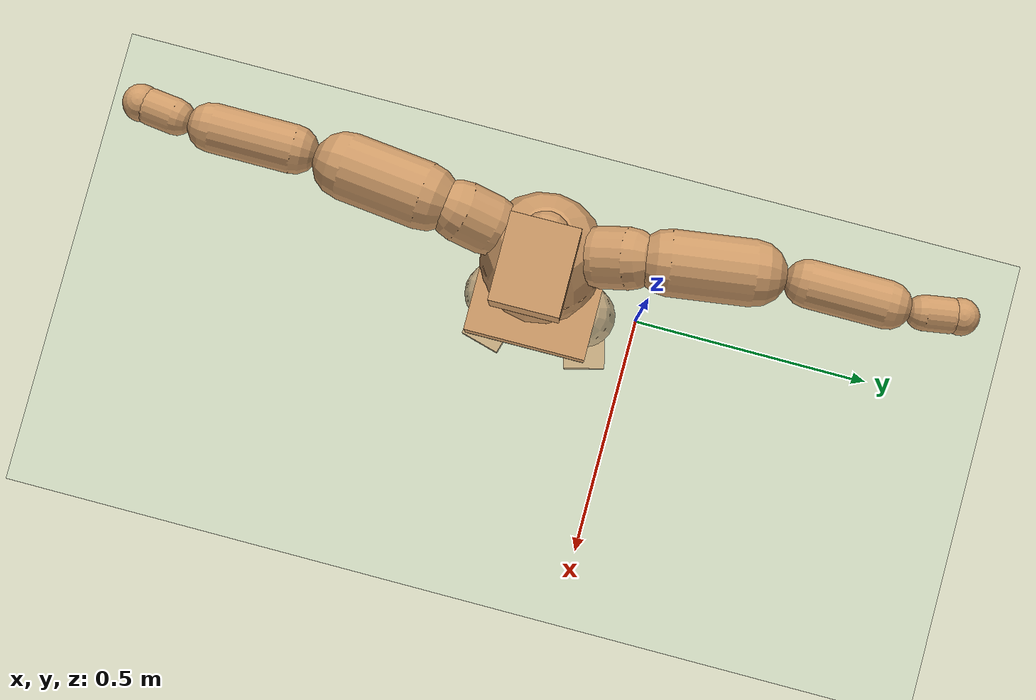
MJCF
<mujoco model="humanoid">
  <compiler coordinate="local" angle="radian"/>
  <default>
    <joint damping="0.0" armature="0.01" stiffness="0.0" limited="true"/>
    <geom conaffinity="1" condim="3" contype="7" margin="0.001" rgba="0.8 0.6 .4 1"/>
  </default>
  <asset>
    <texture type="skybox" builtin="gradient" rgb1=".4 .5 .6" rgb2="0 0 0" width="100" height="100"/>
    <texture builtin="flat" height="1278" mark="cross" markrgb="1 1 1" name="texgeom" random="0.01" rgb1="0.8 0.6 0.4" rgb2="0.8 0.6 0.4" type="cube" width="127"/>
    <texture builtin="checker" height="100" name="texplane" rgb1="0 0 0" rgb2="0.8 0.8 0.8" type="2d" width="100"/>
    <material name="MatPlane" reflectance="0.5" shininess="1" specular="1" texrepeat="60 60" texture="texplane"/>
    <material name="geom" texture="texgeom" texuniform="true"/>
  </asset>
  <worldbody>
    <light cutoff="100" diffuse="1 1 1" dir="-0 0 -1.3" directional="true" exponent="1" pos="0 0 1.3" specular=".1 .1 .1"/>
    <geom conaffinity="1" condim="3" name="floor" pos="0 0 0" rgba="0.8 0.9 0.8 1" size="100 100 .2" type="plane" material="MatPlane"/>
    <body name="Pelvis" pos="0.001 -0.2135 0.0487">
      <freejoint name="Pelvis"/>
      <geom type="box" contype="1" conaffinity="1" density="500" pos="-0.0049 -0.0000 -0.0141" size="0.1173 0.1291 0.0459" quat="1.0000 0.0000 0.0000 0.0021" name="Pelvis"/>
      <body name="L_Hip" pos="0.0042 0.0843 -0.099">
        <joint name="L_Hip_x" type="hinge" pos="0 0 0" axis="1 0 0" stiffness="800" damping="80" armature="0.02" range="-180.0000 180.0000"/>
        <joint name="L_Hip_y" type="hinge" pos="0 0 0" axis="0 1 0" stiffness="800" damping="80" armature="0.02" range="-180.0000 180.0000"/>
        <joint name="L_Hip_z" type="hinge" pos="0 0 0" axis="0 0 1" stiffness="800" damping="80" armature="0.02" range="-180.0000 180.0000"/>
        <geom type="capsule" contype="1" conaffinity="1" density="500" fromto="-0.0049 0.0051 -0.0773 -0.0196 0.0204 -0.3092" size="0.0719" name="L_Hip"/>
        <body name="L_Knee" pos="-0.0245 0.0254 -0.3865">
          <joint name="L_Knee_x" type="hinge" pos="0 0 0" axis="1 0 0" stiffness="800" damping="80" armature="0.02" range="-180.0000 180.0000"/>
          <joint name="L_Knee_y" type="hinge" pos="0 0 0" axis="0 1 0" stiffness="800" damping="80" armature="0.02" range="-180.0000 180.0000"/>
          <joint name="L_Knee_z" type="hinge" pos="0 0 0" axis="0 0 1" stiffness="800" damping="80" armature="0.02" range="-180.0000 180.0000"/>
          <geom type="capsule" contype="1" conaffinity="1" density="500" fromto="-0.0103 -0.0020 -0.0828 -0.0411 -0.0078 -0.3311" size="0.0597" name="L_Knee"/>
          <body name="L_Ankle" pos="-0.0514 -0.0098 -0.4139">
            <joint name="L_Ankle_x" type="hinge" pos="0 0 0" axis="1 0 0" stiffness="800" damping="80" armature="0.02" range="-180.0000 180.0000"/>
            <joint name="L_Ankle_y" type="hinge" pos="0 0 0" axis="0 1 0" stiffness="800" damping="80" armature="0.02" range="-180.0000 180.0000"/>
            <joint name="L_Ankle_z" type="hinge" pos="0 0 0" axis="0 0 1" stiffness="800" damping="80" armature="0.02" range="-180.0000 180.0000"/>
            <geom type="box" contype="1" conaffinity="1" density="500" pos="0.0594 0.0152 -0.0299" size="0.0873 0.0528 0.022" quat="0.9922 0.0000 0.0000 0.1247" name="L_Ankle"/>
            <body name="L_Toe" pos="0.1188 0.0303 -0.0599">
              <joint name="L_Toe_x" type="hinge" pos="0 0 0" axis="1 0 0" stiffness="500" damping="50" armature="0.02" range="-180.0000 180.0000"/>
              <joint name="L_Toe_y" type="hinge" pos="0 0 0" axis="0 1 0" stiffness="500" damping="50" armature="0.02" range="-180.0000 180.0000"/>
              <joint name="L_Toe_z" type="hinge" pos="0 0 0" axis="0 0 1" stiffness="500" damping="50" armature="0.02" range="-180.0000 180.0000"/>
              <geom type="box" contype="1" conaffinity="1" density="500" pos="0.0000 0.0000 0.0300" size="0.001 0.0026 0.0011" quat="0.9915 0.0000 0.0000 0.1304" name="L_Toe"/>
            </body>
          </body>
        </body>
      </body>
      <body name="R_Hip" pos="0.0069 -0.0818 -0.1003">
        <joint name="R_Hip_x" type="hinge" pos="0 0 0" axis="1 0 0" stiffness="800" damping="80" armature="0.02" range="-180.0000 180.0000"/>
        <joint name="R_Hip_y" type="hinge" pos="0 0 0" axis="0 1 0" stiffness="800" damping="80" armature="0.02" range="-180.0000 180.0000"/>
        <joint name="R_Hip_z" type="hinge" pos="0 0 0" axis="0 0 1" stiffness="800" damping="80" armature="0.02" range="-180.0000 180.0000"/>
        <geom type="capsule" contype="1" conaffinity="1" density="500" fromto="-0.0051 -0.0066 -0.0778 -0.0205 -0.0262 -0.3111" size="0.0711" name="R_Hip"/>
        <body name="R_Knee" pos="-0.0257 -0.0328 -0.3889">
          <joint name="R_Knee_x" type="hinge" pos="0 0 0" axis="1 0 0" stiffness="800" damping="80" armature="0.02" range="-180.0000 180.0000"/>
          <joint name="R_Knee_y" type="hinge" pos="0 0 0" axis="0 1 0" stiffness="800" damping="80" armature="0.02" range="-180.0000 180.0000"/>
          <joint name="R_Knee_z" type="hinge" pos="0 0 0" axis="0 0 1" stiffness="800" damping="80" armature="0.02" range="-180.0000 180.0000"/>
          <geom type="capsule" contype="1" conaffinity="1" density="500" fromto="-0.0102 0.0024 -0.0831 -0.0409 0.0097 -0.3325" size="0.0594" name="R_Knee"/>
          <body name="R_Ankle" pos="-0.0511 0.0121 -0.4157">
            <joint name="R_Ankle_x" type="hinge" pos="0 0 0" axis="1 0 0" stiffness="800" damping="80" armature="0.02" range="-180.0000 180.0000"/>
            <joint name="R_Ankle_y" type="hinge" pos="0 0 0" axis="0 1 0" stiffness="800" damping="80" armature="0.02" range="-180.0000 180.0000"/>
            <joint name="R_Ankle_z" type="hinge" pos="0 0 0" axis="0 0 1" stiffness="800" damping="80" armature="0.02" range="-180.0000 180.0000"/>
            <geom type="box" contype="1" conaffinity="1" density="500" pos="0.0617 -0.0168 -0.0251" size="0.0879 0.0519 0.022" quat="0.9912 0.0000 0.0000 -0.1325" name="R_Ankle"/>
            <body name="R_Toe" pos="0.1233 -0.0336 -0.0502">
              <joint name="R_Toe_x" type="hinge" pos="0 0 0" axis="1 0 0" stiffness="500" damping="50" armature="0.02" range="-180.0000 180.0000"/>
              <joint name="R_Toe_y" type="hinge" pos="0 0 0" axis="0 1 0" stiffness="500" damping="50" armature="0.02" range="-180.0000 180.0000"/>
              <joint name="R_Toe_z" type="hinge" pos="0 0 0" axis="0 0 1" stiffness="500" damping="50" armature="0.02" range="-180.0000 180.0000"/>
              <geom type="box" contype="1" conaffinity="1" density="500" pos="0.0000 0.0000 0.0274" size="0.001 0.0025 0.0012" quat="0.9924 0.0000 0.0000 -0.1231" name="R_Toe"/>
            </body>
          </body>
        </body>
      </body>
      <body name="Torso" pos="-0.0404 -0.0027 0.1147">
        <joint name="Torso_x" type="hinge" pos="0 0 0" axis="1 0 0" stiffness="1000" damping="100" armature="0.02" range="-180.0000 180.0000"/>
        <joint name="Torso_y" type="hinge" pos="0 0 0" axis="0 1 0" stiffness="1000" damping="100" armature="0.02" range="-180.0000 180.0000"/>
        <joint name="Torso_z" type="hinge" pos="0 0 0" axis="0 0 1" stiffness="1000" damping="100" armature="0.02" range="-180.0000 180.0000"/>
        <geom type="capsule" contype="1" conaffinity="1" density="500" fromto="-0.0045 0.0014 0.0691 -0.0030 0.0010 0.0461" size="0.0898" name="Torso"/>
        <body name="Spine" pos="-0.0075 0.0024 0.1152">
          <joint name="Spine_x" type="hinge" pos="0 0 0" axis="1 0 0" stiffness="1000" damping="100" armature="0.02" range="-180.0000 180.0000"/>
          <joint name="Spine_y" type="hinge" pos="0 0 0" axis="0 1 0" stiffness="1000" damping="100" armature="0.02" range="-180.0000 180.0000"/>
          <joint name="Spine_z" type="hinge" pos="0 0 0" axis="0 0 1" stiffness="1000" damping="100" armature="0.02" range="-180.0000 180.0000"/>
          <geom type="capsule" contype="1" conaffinity="1" density="500" fromto="0.0242 0.0014 0.0303 0.0161 0.0009 0.0202" size="0.0903" name="Spine"/>
          <body name="Chest" pos="0.0403 0.0023 0.0506">
            <joint name="Chest_x" type="hinge" pos="0 0 0" axis="1 0 0" stiffness="1000" damping="100" armature="0.02" range="-180.0000 180.0000"/>
            <joint name="Chest_y" type="hinge" pos="0 0 0" axis="0 1 0" stiffness="1000" damping="100" armature="0.02" range="-180.0000 180.0000"/>
            <joint name="Chest_z" type="hinge" pos="0 0 0" axis="0 0 1" stiffness="1000" damping="100" armature="0.02" range="-180.0000 180.0000"/>
            <geom type="capsule" contype="1" conaffinity="1" density="500" fromto="-0.0321 0.0003 0.0957 -0.0214 0.0002 0.0638" size="0.118" name="Chest"/>
            <body name="Neck" pos="-0.0615 0.0018 0.2198">
              <joint name="Neck_x" type="hinge" pos="0 0 0" axis="1 0 0" stiffness="500" damping="50" armature="0.02" range="-180.0000 180.0000"/>
              <joint name="Neck_y" type="hinge" pos="0 0 0" axis="0 1 0" stiffness="500" damping="50" armature="0.02" range="-180.0000 180.0000"/>
              <joint name="Neck_z" type="hinge" pos="0 0 0" axis="0 0 1" stiffness="500" damping="50" armature="0.02" range="-180.0000 180.0000"/>
              <geom type="capsule" contype="1" conaffinity="1" density="500" fromto="0.0105 -0.0003 0.0107 0.0419 -0.0013 0.0429" size="0.0456" name="Neck"/>
              <body name="Head" pos="0.0524 -0.0016 0.0536">
                <joint name="Head_x" type="hinge" pos="0 0 0" axis="1 0 0" stiffness="500" damping="50" armature="0.02" range="-180.0000 180.0000"/>
                <joint name="Head_y" type="hinge" pos="0 0 0" axis="0 1 0" stiffness="500" damping="50" armature="0.02" range="-180.0000 180.0000"/>
                <joint name="Head_z" type="hinge" pos="0 0 0" axis="0 0 1" stiffness="500" damping="50" armature="0.02" range="-180.0000 180.0000"/>
                <geom type="box" contype="1" conaffinity="1" density="500" pos="0.0272 0.0002 0.0278" size="0.0805 0.0643 0.0554" quat="1.0000 0.0000 0.0000 0.0036" name="Head"/>
              </body>
            </body>
            <body name="L_Thorax" pos="-0.0466 0.0887 0.1304">
              <joint name="L_Thorax_x" type="hinge" pos="0 0 0" axis="1 0 0" stiffness="500" damping="50" armature="0.02" range="-180.0000 180.0000"/>
              <joint name="L_Thorax_y" type="hinge" pos="0 0 0" axis="0 1 0" stiffness="500" damping="50" armature="0.02" range="-180.0000 180.0000"/>
              <joint name="L_Thorax_z" type="hinge" pos="0 0 0" axis="0 0 1" stiffness="500" damping="50" armature="0.02" range="-180.0000 180.0000"/>
              <geom type="capsule" contype="1" conaffinity="1" density="500" fromto="-0.0030 0.0179 0.0068 -0.0122 0.0718 0.0274" size="0.0587" name="L_Thorax"/>
              <body name="L_Shoulder" pos="-0.0152 0.0897 0.0342">
                <joint name="L_Shoulder_x" type="hinge" pos="0 0 0" axis="1 0 0" stiffness="500" damping="50" armature="0.02" range="-720.0000 720.0000"/>
                <joint name="L_Shoulder_y" type="hinge" pos="0 0 0" axis="0 1 0" stiffness="500" damping="50" armature="0.02" range="-720.0000 720.0000"/>
                <joint name="L_Shoulder_z" type="hinge" pos="0 0 0" axis="0 0 1" stiffness="500" damping="50" armature="0.02" range="-720.0000 720.0000"/>
                <geom type="capsule" contype="1" conaffinity="1" density="500" fromto="-0.0073 0.0524 -0.0018 -0.0293 0.2095 -0.0071" size="0.0632" name="L_Shoulder"/>
                <body name="L_Elbow" pos="-0.0366 0.2618 -0.0088">
                  <joint name="L_Elbow_x" type="hinge" pos="0 0 0" axis="1 0 0" stiffness="500" damping="50" armature="0.02" range="-720.0000 720.0000"/>
                  <joint name="L_Elbow_y" type="hinge" pos="0 0 0" axis="0 1 0" stiffness="500" damping="50" armature="0.02" range="-720.0000 720.0000"/>
                  <joint name="L_Elbow_z" type="hinge" pos="0 0 0" axis="0 0 1" stiffness="500" damping="50" armature="0.02" range="-720.0000 720.0000"/>
                  <geom type="capsule" contype="1" conaffinity="1" density="500" fromto="0.0004 0.0497 0.0025 0.0018 0.1989 0.0101" size="0.0459" name="L_Elbow"/>
                  <body name="L_Wrist" pos="0.0022 0.2487 0.0126">
                    <joint name="L_Wrist_x" type="hinge" pos="0 0 0" axis="1 0 0" stiffness="300" damping="30" armature="0.02" range="-180.0000 180.0000"/>
                    <joint name="L_Wrist_y" type="hinge" pos="0 0 0" axis="0 1 0" stiffness="300" damping="30" armature="0.02" range="-180.0000 180.0000"/>
                    <joint name="L_Wrist_z" type="hinge" pos="0 0 0" axis="0 0 1" stiffness="300" damping="30" armature="0.02" range="-180.0000 180.0000"/>
                    <geom type="capsule" contype="1" conaffinity="1" density="500" fromto="-0.0029 0.0174 -0.0020 -0.0115 0.0697 -0.0081" size="0.0335" name="L_Wrist"/>
                    <body name="L_Hand" pos="-0.0144 0.0871 -0.0101">
                      <joint name="L_Hand_x" type="hinge" pos="0 0 0" axis="1 0 0" stiffness="300" damping="30" armature="0.02" range="-180.0000 180.0000"/>
                      <joint name="L_Hand_y" type="hinge" pos="0 0 0" axis="0 1 0" stiffness="300" damping="30" armature="0.02" range="-180.0000 180.0000"/>
                      <joint name="L_Hand_z" type="hinge" pos="0 0 0" axis="0 0 1" stiffness="300" damping="30" armature="0.02" range="-180.0000 180.0000"/>
                      <geom type="sphere" contype="1" conaffinity="1" density="500" size="0.0353" pos="0.0000 0.0000 0.0000" name="L_Hand"/>
                    </body>
                  </body>
                </body>
              </body>
            </body>
            <body name="R_Thorax" pos="-0.0524 -0.0891 0.1284">
              <joint name="R_Thorax_x" type="hinge" pos="0 0 0" axis="1 0 0" stiffness="500" damping="50" armature="0.02" range="-180.0000 180.0000"/>
              <joint name="R_Thorax_y" type="hinge" pos="0 0 0" axis="0 1 0" stiffness="500" damping="50" armature="0.02" range="-180.0000 180.0000"/>
              <joint name="R_Thorax_z" type="hinge" pos="0 0 0" axis="0 0 1" stiffness="500" damping="50" armature="0.02" range="-180.0000 180.0000"/>
              <geom type="capsule" contype="1" conaffinity="1" density="500" fromto="-0.0030 -0.0190 0.0068 -0.0120 -0.0761 0.0272" size="0.0586" name="R_Thorax"/>
              <body name="R_Shoulder" pos="-0.0151 -0.0951 0.034">
                <joint name="R_Shoulder_x" type="hinge" pos="0 0 0" axis="1 0 0" stiffness="500" damping="50" armature="0.02" range="-720.0000 720.0000"/>
                <joint name="R_Shoulder_y" type="hinge" pos="0 0 0" axis="0 1 0" stiffness="500" damping="50" armature="0.02" range="-720.0000 720.0000"/>
                <joint name="R_Shoulder_z" type="hinge" pos="0 0 0" axis="0 0 1" stiffness="500" damping="50" armature="0.02" range="-720.0000 720.0000"/>
                <geom type="capsule" contype="1" conaffinity="1" density="500" fromto="-0.0059 -0.0517 -0.0024 -0.0237 -0.2068 -0.0097" size="0.0647" name="R_Shoulder"/>
                <body name="R_Elbow" pos="-0.0297 -0.2585 -0.0122">
                  <joint name="R_Elbow_x" type="hinge" pos="0 0 0" axis="1 0 0" stiffness="500" damping="50" armature="0.02" range="-720.0000 720.0000"/>
                  <joint name="R_Elbow_y" type="hinge" pos="0 0 0" axis="0 1 0" stiffness="500" damping="50" armature="0.02" range="-720.0000 720.0000"/>
                  <joint name="R_Elbow_z" type="hinge" pos="0 0 0" axis="0 0 1" stiffness="500" damping="50" armature="0.02" range="-720.0000 720.0000"/>
                  <geom type="capsule" contype="1" conaffinity="1" density="500" fromto="0.0004 -0.0517 0.0033 0.0015 -0.2066 0.0132" size="0.0468" name="R_Elbow"/>
                  <body name="R_Wrist" pos="0.0019 -0.2583 0.0165">
                    <joint name="R_Wrist_x" type="hinge" pos="0 0 0" axis="1 0 0" stiffness="300" damping="30" armature="0.02" range="-180.0000 180.0000"/>
                    <joint name="R_Wrist_y" type="hinge" pos="0 0 0" axis="0 1 0" stiffness="300" damping="30" armature="0.02" range="-180.0000 180.0000"/>
                    <joint name="R_Wrist_z" type="hinge" pos="0 0 0" axis="0 0 1" stiffness="300" damping="30" armature="0.02" range="-180.0000 180.0000"/>
                    <geom type="capsule" contype="1" conaffinity="1" density="500" fromto="-0.0024 -0.0177 -0.0016 -0.0094 -0.0707 -0.0062" size="0.0346" name="R_Wrist"/>
                    <body name="R_Hand" pos="-0.0118 -0.0883 -0.0078">
                      <joint name="R_Hand_x" type="hinge" pos="0 0 0" axis="1 0 0" stiffness="300" damping="30" armature="0.02" range="-180.0000 180.0000"/>
                      <joint name="R_Hand_y" type="hinge" pos="0 0 0" axis="0 1 0" stiffness="300" damping="30" armature="0.02" range="-180.0000 180.0000"/>
                      <joint name="R_Hand_z" type="hinge" pos="0 0 0" axis="0 0 1" stiffness="300" damping="30" armature="0.02" range="-180.0000 180.0000"/>
                      <geom type="sphere" contype="1" conaffinity="1" density="500" size="0.0358" pos="0.0000 0.0000 0.0000" name="R_Hand"/>
                    </body>
                  </body>
                </body>
              </body>
            </body>
          </body>
        </body>
      </body>
    </body>
  </worldbody>
  <actuator>
    <motor name="L_Hip_x" joint="L_Hip_x" gear="500"/>
    <motor name="L_Hip_y" joint="L_Hip_y" gear="500"/>
    <motor name="L_Hip_z" joint="L_Hip_z" gear="500"/>
    <motor name="L_Knee_x" joint="L_Knee_x" gear="500"/>
    <motor name="L_Knee_y" joint="L_Knee_y" gear="500"/>
    <motor name="L_Knee_z" joint="L_Knee_z" gear="500"/>
    <motor name="L_Ankle_x" joint="L_Ankle_x" gear="500"/>
    <motor name="L_Ankle_y" joint="L_Ankle_y" gear="500"/>
    <motor name="L_Ankle_z" joint="L_Ankle_z" gear="500"/>
    <motor name="L_Toe_x" joint="L_Toe_x" gear="500"/>
    <motor name="L_Toe_y" joint="L_Toe_y" gear="500"/>
    <motor name="L_Toe_z" joint="L_Toe_z" gear="500"/>
    <motor name="R_Hip_x" joint="R_Hip_x" gear="500"/>
    <motor name="R_Hip_y" joint="R_Hip_y" gear="500"/>
    <motor name="R_Hip_z" joint="R_Hip_z" gear="500"/>
    <motor name="R_Knee_x" joint="R_Knee_x" gear="500"/>
    <motor name="R_Knee_y" joint="R_Knee_y" gear="500"/>
    <motor name="R_Knee_z" joint="R_Knee_z" gear="500"/>
    <motor name="R_Ankle_x" joint="R_Ankle_x" gear="500"/>
    <motor name="R_Ankle_y" joint="R_Ankle_y" gear="500"/>
    <motor name="R_Ankle_z" joint="R_Ankle_z" gear="500"/>
    <motor name="R_Toe_x" joint="R_Toe_x" gear="500"/>
    <motor name="R_Toe_y" joint="R_Toe_y" gear="500"/>
    <motor name="R_Toe_z" joint="R_Toe_z" gear="500"/>
    <motor name="Torso_x" joint="Torso_x" gear="500"/>
    <motor name="Torso_y" joint="Torso_y" gear="500"/>
    <motor name="Torso_z" joint="Torso_z" gear="500"/>
    <motor name="Spine_x" joint="Spine_x" gear="500"/>
    <motor name="Spine_y" joint="Spine_y" gear="500"/>
    <motor name="Spine_z" joint="Spine_z" gear="500"/>
    <motor name="Chest_x" joint="Chest_x" gear="500"/>
    <motor name="Chest_y" joint="Chest_y" gear="500"/>
    <motor name="Chest_z" joint="Chest_z" gear="500"/>
    <motor name="Neck_x" joint="Neck_x" gear="500"/>
    <motor name="Neck_y" joint="Neck_y" gear="500"/>
    <motor name="Neck_z" joint="Neck_z" gear="500"/>
    <motor name="Head_x" joint="Head_x" gear="500"/>
    <motor name="Head_y" joint="Head_y" gear="500"/>
    <motor name="Head_z" joint="Head_z" gear="500"/>
    <motor name="L_Thorax_x" joint="L_Thorax_x" gear="500"/>
    <motor name="L_Thorax_y" joint="L_Thorax_y" gear="500"/>
    <motor name="L_Thorax_z" joint="L_Thorax_z" gear="500"/>
    <motor name="L_Shoulder_x" joint="L_Shoulder_x" gear="500"/>
    <motor name="L_Shoulder_y" joint="L_Shoulder_y" gear="500"/>
    <motor name="L_Shoulder_z" joint="L_Shoulder_z" gear="500"/>
    <motor name="L_Elbow_x" joint="L_Elbow_x" gear="500"/>
    <motor name="L_Elbow_y" joint="L_Elbow_y" gear="500"/>
    <motor name="L_Elbow_z" joint="L_Elbow_z" gear="500"/>
    <motor name="L_Wrist_x" joint="L_Wrist_x" gear="500"/>
    <motor name="L_Wrist_y" joint="L_Wrist_y" gear="500"/>
    <motor name="L_Wrist_z" joint="L_Wrist_z" gear="500"/>
    <motor name="L_Hand_x" joint="L_Hand_x" gear="500"/>
    <motor name="L_Hand_y" joint="L_Hand_y" gear="500"/>
    <motor name="L_Hand_z" joint="L_Hand_z" gear="500"/>
    <motor name="R_Thorax_x" joint="R_Thorax_x" gear="500"/>
    <motor name="R_Thorax_y" joint="R_Thorax_y" gear="500"/>
    <motor name="R_Thorax_z" joint="R_Thorax_z" gear="500"/>
    <motor name="R_Shoulder_x" joint="R_Shoulder_x" gear="500"/>
    <motor name="R_Shoulder_y" joint="R_Shoulder_y" gear="500"/>
    <motor name="R_Shoulder_z" joint="R_Shoulder_z" gear="500"/>
    <motor name="R_Elbow_x" joint="R_Elbow_x" gear="500"/>
    <motor name="R_Elbow_y" joint="R_Elbow_y" gear="500"/>
    <motor name="R_Elbow_z" joint="R_Elbow_z" gear="500"/>
    <motor name="R_Wrist_x" joint="R_Wrist_x" gear="500"/>
    <motor name="R_Wrist_y" joint="R_Wrist_y" gear="500"/>
    <motor name="R_Wrist_z" joint="R_Wrist_z" gear="500"/>
    <motor name="R_Hand_x" joint="R_Hand_x" gear="500"/>
    <motor name="R_Hand_y" joint="R_Hand_y" gear="500"/>
    <motor name="R_Hand_z" joint="R_Hand_z" gear="500"/>
  </actuator>
  <contact>
    <exclude body1="Torso" body2="Chest"/>
    <exclude body1="Head" body2="Chest"/>
    <exclude body1="R_Knee" body2="R_Toe"/>
    <exclude body1="R_Knee" body2="L_Ankle"/>
    <exclude body1="R_Knee" body2="L_Toe"/>
    <exclude body1="L_Knee" body2="L_Toe"/>
    <exclude body1="L_Knee" body2="R_Ankle"/>
    <exclude body1="L_Knee" body2="R_Toe"/>
    <exclude body1="L_Shoulder" body2="Chest"/>
    <exclude body1="R_Shoulder" body2="Chest"/>
  </contact>
  <sensor/>
  <size njmax="700" nconmax="700"/>
</mujoco>
